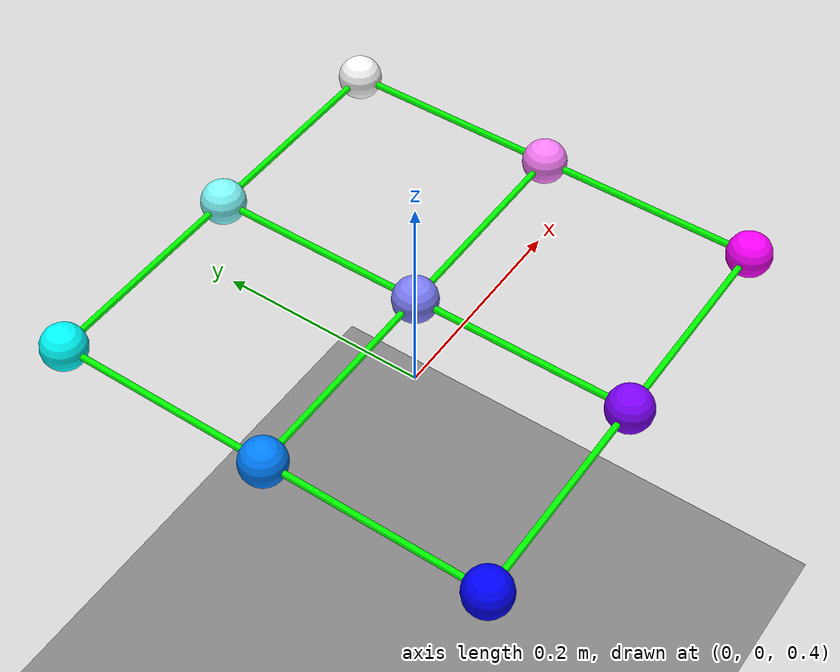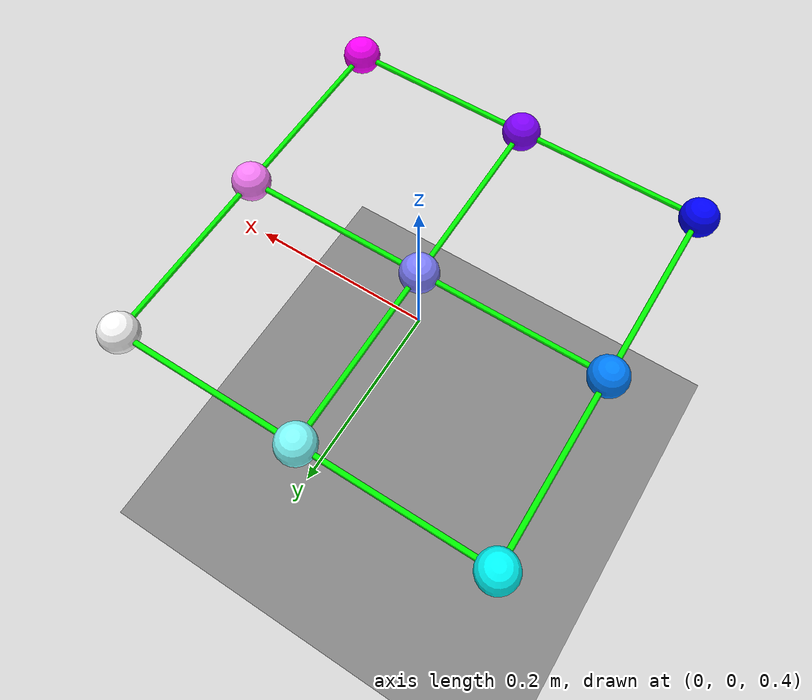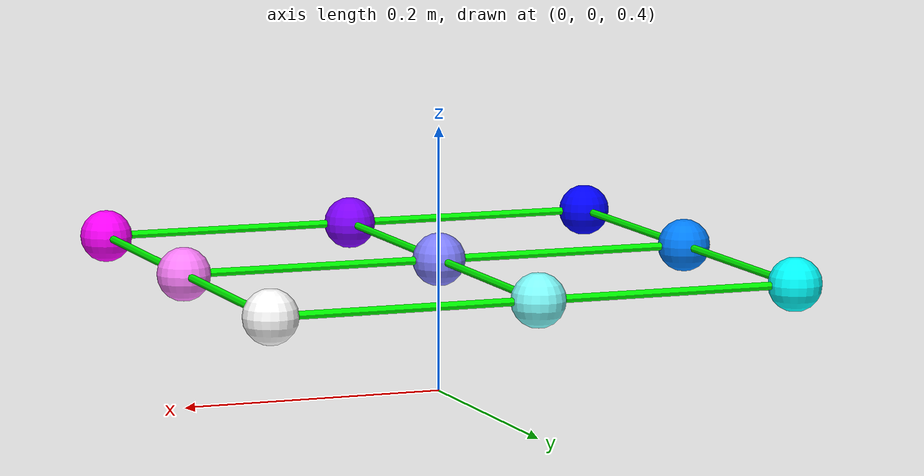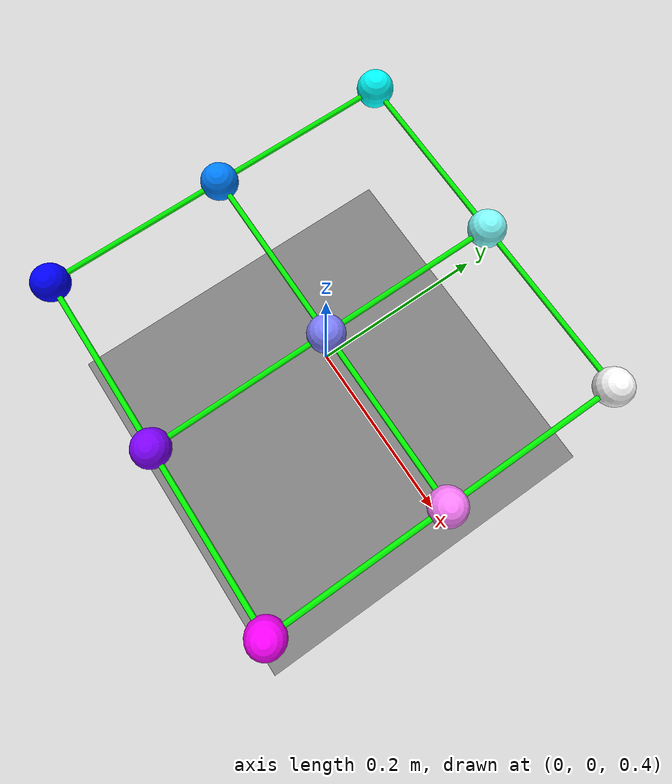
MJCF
<?xml version="1.0" encoding="utf-8"?>
<mujoco><worldbody><light pos="0 0 4" /><geom name="floor" type="plane" size="2 2 0.1" /><body name="mass_0_0" pos="-0.2 -0.2 0.5"><freejoint /><geom name="mass_0_0_mass" type="sphere" size="0.02" rgba="0 0 1 1" mass="0.1" /><site name="mass_0_0_site" pos="0 0 0" size="0.005" /></body><body name="mass_0_1" pos="-0.2 0 0.5"><freejoint /><geom name="mass_0_1_mass" type="sphere" size="0.02" rgba="0 0.5 1 1" mass="0.1" /><site name="mass_0_1_site" pos="0 0 0" size="0.005" /></body><body name="mass_0_2" pos="-0.2 0.2 0.5"><freejoint /><geom name="mass_0_2_mass" type="sphere" size="0.02" rgba="0 1 1 1" mass="0.1" /><site name="mass_0_2_site" pos="0 0 0" size="0.005" /></body><body name="mass_1_0" pos="0 -0.2 0.5"><freejoint /><geom name="mass_1_0_mass" type="sphere" size="0.02" rgba="0.5 0 1 1" mass="0.1" /><site name="mass_1_0_site" pos="0 0 0" size="0.005" /></body><body name="mass_1_1" pos="0 0 0.5"><freejoint /><geom name="mass_1_1_mass" type="sphere" size="0.02" rgba="0.5 0.5 1 1" mass="0.1" /><site name="mass_1_1_site" pos="0 0 0" size="0.005" /></body><body name="mass_1_2" pos="0 0.2 0.5"><freejoint /><geom name="mass_1_2_mass" type="sphere" size="0.02" rgba="0.5 1 1 1" mass="0.1" /><site name="mass_1_2_site" pos="0 0 0" size="0.005" /></body><body name="mass_2_0" pos="0.2 -0.2 0.5"><freejoint /><geom name="mass_2_0_mass" type="sphere" size="0.02" rgba="1 0 1 1" mass="0.1" /><site name="mass_2_0_site" pos="0 0 0" size="0.005" /></body><body name="mass_2_1" pos="0.2 0 0.5"><freejoint /><geom name="mass_2_1_mass" type="sphere" size="0.02" rgba="1 0.5 1 1" mass="0.1" /><site name="mass_2_1_site" pos="0 0 0" size="0.005" /></body><body name="mass_2_2" pos="0.2 0.2 0.5"><freejoint /><geom name="mass_2_2_mass" type="sphere" size="0.02" rgba="1 1 1 1" mass="0.1" /><site name="mass_2_2_site" pos="0 0 0" size="0.005" /></body></worldbody><option gravity="0 0 -9.81" timestep="0.001" /><tendon><spatial name="spring_1" rgba="0 1 0 1" stiffness="100" damping="10" springlength="0.2"><site site="mass_0_0_site" /><site site="mass_0_1_site" /></spatial><spatial name="spring_2" rgba="0 1 0 1" stiffness="100" damping="10" springlength="0.2"><site site="mass_0_0_site" /><site site="mass_1_0_site" /></spatial><spatial name="spring_3" rgba="0 1 0 1" stiffness="100" damping="10" springlength="0.2"><site site="mass_0_1_site" /><site site="mass_0_2_site" /></spatial><spatial name="spring_4" rgba="0 1 0 1" stiffness="100" damping="10" springlength="0.2"><site site="mass_0_1_site" /><site site="mass_1_1_site" /></spatial><spatial name="spring_5" rgba="0 1 0 1" stiffness="100" damping="10" springlength="0.2"><site site="mass_0_2_site" /><site site="mass_1_2_site" /></spatial><spatial name="spring_6" rgba="0 1 0 1" stiffness="100" damping="10" springlength="0.2"><site site="mass_1_0_site" /><site site="mass_1_1_site" /></spatial><spatial name="spring_7" rgba="0 1 0 1" stiffness="100" damping="10" springlength="0.2"><site site="mass_1_0_site" /><site site="mass_2_0_site" /></spatial><spatial name="spring_8" rgba="0 1 0 1" stiffness="100" damping="10" springlength="0.2"><site site="mass_1_1_site" /><site site="mass_1_2_site" /></spatial><spatial name="spring_9" rgba="0 1 0 1" stiffness="100" damping="10" springlength="0.2"><site site="mass_1_1_site" /><site site="mass_2_1_site" /></spatial><spatial name="spring_10" rgba="0 1 0 1" stiffness="100" damping="10" springlength="0.2"><site site="mass_1_2_site" /><site site="mass_2_2_site" /></spatial><spatial name="spring_11" rgba="0 1 0 1" stiffness="100" damping="10" springlength="0.2"><site site="mass_2_0_site" /><site site="mass_2_1_site" /></spatial><spatial name="spring_12" rgba="0 1 0 1" stiffness="100" damping="10" springlength="0.2"><site site="mass_2_1_site" /><site site="mass_2_2_site" /></spatial></tendon></mujoco>
